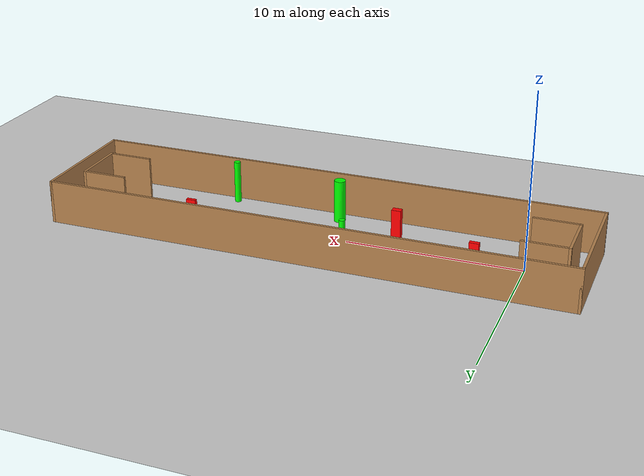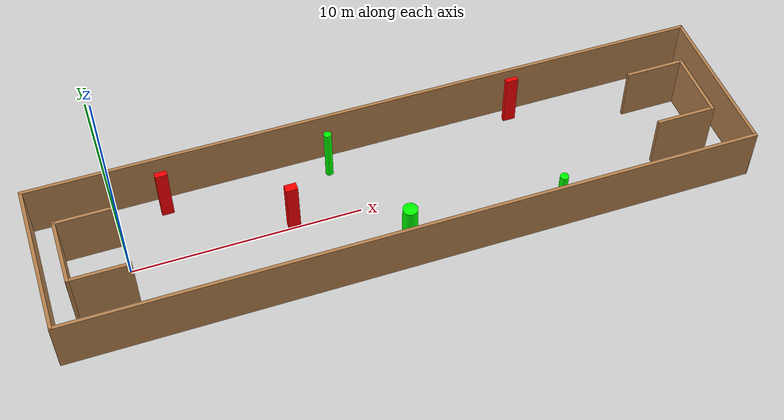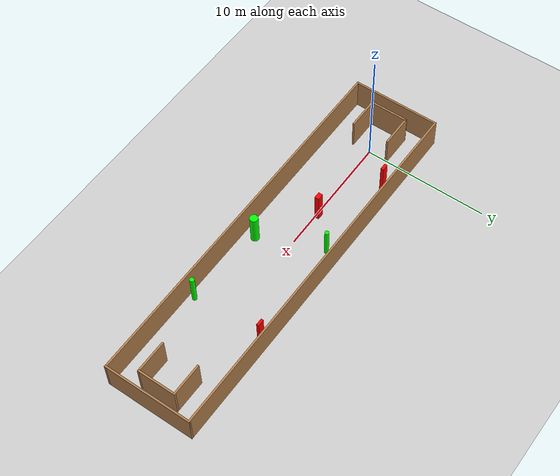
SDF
<sdf version="1.7">
 <world name="default">
  <light name="sun" type="directional">
   <pose>0 0 10 0 -0 0</pose>
   <diffuse>0.8 0.8 0.8 1</diffuse>
   <specular>0.2 0.2 0.2 1</specular>
   <attenuation>
    <range>1000</range>
    <constant>0.9</constant>
    <linear>0.01</linear>
    <quadratic>0.001</quadratic>
   </attenuation>
   <direction>-0.5 0.1 -0.9</direction>
   <spot><inner_angle>0</inner_angle><outer_angle>0</outer_angle><falloff>0</falloff></spot>
  </light>
  <model name="ground_plane">
   <static>1</static>
   <link name="link">
    <collision name="collision">
     <geometry><plane><normal>0 0 1</normal><size>100 100</size></plane></geometry>
     <surface>
      <contact><collide_bitmask>65535</collide_bitmask></contact>
      <friction><ode><mu>100</mu><mu2>50</mu2></ode></friction>
     </surface>
    </collision>
    <visual name="visual">
     <cast_shadows>0</cast_shadows>
     <geometry><plane><normal>0 0 1</normal><size>100 100</size></plane></geometry>
     <material>
      <script><uri>file://media/materials/scripts/gazebo.material</uri><name>Gazebo/Grey</name></script>
     </material>
    </visual>
   </link>
  </model>
  <gravity>0 0 -9.8</gravity>
  <magnetic_field>6e-06 2.3e-05 -4.2e-05</magnetic_field>
  <atmosphere type="adiabatic"/>
  <physics type="ode">
   <max_step_size>0.001</max_step_size>
   <real_time_factor>1</real_time_factor>
   <real_time_update_rate>1000</real_time_update_rate>
  </physics>
  <scene><ambient>0.4 0.4 0.4 1</ambient><background>0.7 0.7 0.7 1</background><shadows>1</shadows></scene>
  <spherical_coordinates>
   <surface_model>EARTH_WGS84</surface_model>
   <latitude_deg>0</latitude_deg>
   <longitude_deg>0</longitude_deg>
   <elevation>0</elevation>
   <heading_deg>0</heading_deg>
  </spherical_coordinates>
  <model name="my_base_walls">
   <link name="Wall_0">
    <collision name="Wall_0_Collision">
     <geometry><box><size>7.15 0.15 2.5</size></box></geometry>
     <pose>0 0 1.25 0 -0 0</pose>
    </collision>
    <visual name="Wall_0_Visual">
     <pose>0 0 1.25 0 -0 0</pose>
     <geometry><box><size>7.15 0.15 2.5</size></box></geometry>
     <material>
      <script><uri>file://media/materials/scripts/gazebo.material</uri><name>Gazebo/Wood</name></script>
      <ambient>1 1 1 1</ambient>
     </material>
     <meta><layer>0</layer></meta>
    </visual>
    <pose>-15 0 0 0 -0 1.5708</pose>
   </link>
   <link name="Wall_10">
    <collision name="Wall_10_Collision">
     <geometry><box><size>2.65 0.15 2.5</size></box></geometry>
     <pose>0 0 1.25 0 -0 0</pose>
    </collision>
    <visual name="Wall_10_Visual">
     <pose>0 0 1.25 0 -0 0</pose>
     <geometry><box><size>2.65 0.15 2.5</size></box></geometry>
     <material>
      <script><uri>file://media/materials/scripts/gazebo.material</uri><name>Gazebo/Wood</name></script>
      <ambient>1 1 1 1</ambient>
     </material>
     <meta><layer>0</layer></meta>
    </visual>
    <pose>-12.75 -1.5 0 0 -0 0</pose>
   </link>
   <link name="Wall_12">
    <collision name="Wall_12_Collision">
     <geometry><box><size>2.65 0.15 2.5</size></box></geometry>
     <pose>0 0 1.25 0 -0 0</pose>
    </collision>
    <visual name="Wall_12_Visual">
     <pose>0 0 1.25 0 -0 0</pose>
     <geometry><box><size>2.65 0.15 2.5</size></box></geometry>
     <material>
      <script><uri>file://media/materials/scripts/gazebo.material</uri><name>Gazebo/Wood</name></script>
      <ambient>1 1 1 1</ambient>
     </material>
     <meta><layer>0</layer></meta>
    </visual>
    <pose>-12.75 1.5 0 0 -0 0</pose>
   </link>
   <link name="Wall_14">
    <collision name="Wall_14_Collision">
     <geometry><box><size>3.15 0.15 2.5</size></box></geometry>
     <pose>0 0 1.25 0 -0 0</pose>
    </collision>
    <visual name="Wall_14_Visual">
     <pose>0 0 1.25 0 -0 0</pose>
     <geometry><box><size>3.15 0.15 2.5</size></box></geometry>
     <material>
      <script><uri>file://media/materials/scripts/gazebo.material</uri><name>Gazebo/Wood</name></script>
      <ambient>1 1 1 1</ambient>
     </material>
     <meta><layer>0</layer></meta>
    </visual>
    <pose>14 0 0 0 -0 -1.5708</pose>
   </link>
   <link name="Wall_15">
    <collision name="Wall_15_Collision">
     <geometry><box><size>2.65 0.15 2.5</size></box></geometry>
     <pose>0 0 1.25 0 -0 0</pose>
    </collision>
    <visual name="Wall_15_Visual">
     <pose>0 0 1.25 0 -0 0</pose>
     <geometry><box><size>2.65 0.15 2.5</size></box></geometry>
     <material>
      <script><uri>file://media/materials/scripts/gazebo.material</uri><name>Gazebo/Wood</name></script>
      <ambient>1 1 1 1</ambient>
     </material>
     <meta><layer>0</layer></meta>
    </visual>
    <pose>12.75 -1.5 0 0 -0 3.14159</pose>
   </link>
   <link name="Wall_17">
    <collision name="Wall_17_Collision">
     <geometry><box><size>2.65 0.15 2.5</size></box></geometry>
     <pose>0 0 1.25 0 -0 0</pose>
    </collision>
    <visual name="Wall_17_Visual">
     <pose>0 0 1.25 0 -0 0</pose>
     <geometry><box><size>2.65 0.15 2.5</size></box></geometry>
     <material>
      <script><uri>file://media/materials/scripts/gazebo.material</uri><name>Gazebo/Wood</name></script>
      <ambient>1 1 1 1</ambient>
     </material>
     <meta><layer>0</layer></meta>
    </visual>
    <pose>12.75 1.5 0 0 -0 3.14159</pose>
   </link>
   <link name="Wall_2">
    <collision name="Wall_2_Collision">
     <geometry><box><size>30.15 0.15 2.5</size></box></geometry>
     <pose>0 0 1.25 0 -0 0</pose>
    </collision>
    <visual name="Wall_2_Visual">
     <pose>0 0 1.25 0 -0 0</pose>
     <geometry><box><size>30.15 0.15 2.5</size></box></geometry>
     <material>
      <script><uri>file://media/materials/scripts/gazebo.material</uri><name>Gazebo/Wood</name></script>
      <ambient>1 1 1 1</ambient>
     </material>
     <meta><layer>0</layer></meta>
    </visual>
    <pose>-0 -3.5 0 0 -0 0</pose>
   </link>
   <link name="Wall_4">
    <collision name="Wall_4_Collision">
     <geometry><box><size>30.15 0.15 2.5</size></box></geometry>
     <pose>0 0 1.25 0 -0 0</pose>
    </collision>
    <visual name="Wall_4_Visual">
     <pose>0 0 1.25 0 -0 0</pose>
     <geometry><box><size>30.15 0.15 2.5</size></box></geometry>
     <material>
      <script><uri>file://media/materials/scripts/gazebo.material</uri><name>Gazebo/Wood</name></script>
      <ambient>1 1 1 1</ambient>
     </material>
     <meta><layer>0</layer></meta>
    </visual>
    <pose>-0 3.5 0 0 -0 0</pose>
   </link>
   <link name="Wall_6">
    <collision name="Wall_6_Collision">
     <geometry><box><size>7.15 0.15 2.5</size></box></geometry>
     <pose>0 0 1.25 0 -0 0</pose>
    </collision>
    <visual name="Wall_6_Visual">
     <pose>0 0 1.25 0 -0 0</pose>
     <geometry><box><size>7.15 0.15 2.5</size></box></geometry>
     <material>
      <script><uri>file://media/materials/scripts/gazebo.material</uri><name>Gazebo/Wood</name></script>
      <ambient>1 1 1 1</ambient>
     </material>
     <meta><layer>0</layer></meta>
    </visual>
    <pose>15 0 0 0 -0 -1.5708</pose>
   </link>
   <link name="Wall_9">
    <collision name="Wall_9_Collision">
     <geometry><box><size>3.15 0.15 2.5</size></box></geometry>
     <pose>0 0 1.25 0 -0 0</pose>
    </collision>
    <visual name="Wall_9_Visual">
     <pose>0 0 1.25 0 -0 0</pose>
     <geometry><box><size>3.15 0.15 2.5</size></box></geometry>
     <material>
      <script><uri>file://media/materials/scripts/gazebo.material</uri><name>Gazebo/Wood</name></script>
      <ambient>1 1 1 1</ambient>
     </material>
     <meta><layer>0</layer></meta>
    </visual>
    <pose>-14 0 0 0 -0 -1.5708</pose>
   </link>
   <static>1</static>
   <pose>11.5 0 0 0 -0 0</pose>
  </model>
  <model name="cylinder1">
   <static>1</static>
   <link name="link">
    <inertial>
     <mass>1</mass>
     <inertia><ixx>0.5</ixx><ixy>0</ixy><ixz>0</ixz><iyy>0.5</iyy><iyz>0</iyz><izz>1</izz></inertia>
    </inertial>
    <collision name="collision">
     <geometry><cylinder><radius>0.18548184002192725</radius><length>2.5</length></cylinder></geometry>
    </collision>
    <visual name="visual">
     <geometry><cylinder><radius>0.18548184002192725</radius><length>2.5</length></cylinder></geometry>
     <material>
      <ambient>0 1 0 1</ambient>
      <diffuse>0 1 0 1</diffuse>
      <specular>0.1 0.1 0.1 1</specular>
      <emissive>0 0 0 0</emissive>
     </material>
    </visual>
   </link>
   <pose>17.919174835664215 -2.964249737826059 1.25 0 0 0</pose>
  </model>
  <model name="cylinder2">
   <static>1</static>
   <link name="link">
    <inertial>
     <mass>1</mass>
     <inertia><ixx>0.5</ixx><ixy>0</ixy><ixz>0</ixz><iyy>0.5</iyy><iyz>0</iyz><izz>1</izz></inertia>
    </inertial>
    <collision name="collision">
     <geometry><cylinder><radius>0.16707664510622686</radius><length>2.5</length></cylinder></geometry>
    </collision>
    <visual name="visual">
     <geometry><cylinder><radius>0.16707664510622686</radius><length>2.5</length></cylinder></geometry>
     <material>
      <ambient>0 1 0 1</ambient>
      <diffuse>0 1 0 1</diffuse>
      <specular>0.1 0.1 0.1 1</specular>
      <emissive>0 0 0 0</emissive>
     </material>
    </visual>
   </link>
   <pose>9.354463557236258 2.4594347185683 1.25 0 0 0</pose>
  </model>
  <model name="cylinder3">
   <static>1</static>
   <link name="link">
    <inertial>
     <mass>1</mass>
     <inertia><ixx>0.5</ixx><ixy>0</ixy><ixz>0</ixz><iyy>0.5</iyy><iyz>0</iyz><izz>1</izz></inertia>
    </inertial>
    <collision name="collision">
     <geometry><cylinder><radius>0.32416614149694045</radius><length>2.5</length></cylinder></geometry>
    </collision>
    <visual name="visual">
     <geometry><cylinder><radius>0.32416614149694045</radius><length>2.5</length></cylinder></geometry>
     <material>
      <ambient>0 1 0 1</ambient>
      <diffuse>0 1 0 1</diffuse>
      <specular>0.1 0.1 0.1 1</specular>
      <emissive>0 0 0 0</emissive>
     </material>
    </visual>
   </link>
   <pose>11.314628688363365 -2.52101461284824 1.25 0 0 0</pose>
  </model>
  <model name="box1">
   <static>1</static>
   <link name="link">
    <inertial>
     <mass>1</mass>
     <inertia><ixx>0.083</ixx><ixy>0</ixy><ixz>0</ixz><iyy>0.083</iyy><iyz>0</iyz><izz>0.083</izz></inertia>
    </inertial>
    <collision name="collision">
     <geometry><box><size>0.5263332011200486 0.24691930433820594 2.5</size></box></geometry>
    </collision>
    <visual name="visual">
     <geometry><box><size>0.5263332011200486 0.24691930433820594 2.5</size></box></geometry>
     <material>
      <ambient>1 0 0 1</ambient>
      <diffuse>1 0 0 1</diffuse>
      <specular>0.1 0.1 0.1 1</specular>
      <emissive>0 0 0 0</emissive>
     </material>
    </visual>
    <sensor name="my_contact" type="contact">
     <contact><collision>box_collision</collision><topic>__default_topic__</topic></contact>
    </sensor>
   </link>
   <pose>2.161167702987683 2.6062651259918193 1.25 0 0 0</pose>
  </model>
  <model name="box2">
   <static>1</static>
   <link name="link">
    <inertial>
     <mass>1</mass>
     <inertia><ixx>0.083</ixx><ixy>0</ixy><ixz>0</ixz><iyy>0.083</iyy><iyz>0</iyz><izz>0.083</izz></inertia>
    </inertial>
    <collision name="collision">
     <geometry><box><size>0.545960829960032 0.2001453024576002 2.5</size></box></geometry>
    </collision>
    <visual name="visual">
     <geometry><box><size>0.545960829960032 0.2001453024576002 2.5</size></box></geometry>
     <material>
      <ambient>1 0 0 1</ambient>
      <diffuse>1 0 0 1</diffuse>
      <specular>0.1 0.1 0.1 1</specular>
      <emissive>0 0 0 0</emissive>
     </material>
    </visual>
    <sensor name="my_contact" type="contact">
     <contact><collision>box_collision</collision><topic>__default_topic__</topic></contact>
    </sensor>
   </link>
   <pose>17.960988146890603 2.9039815657603594 1.25 0 0 0</pose>
  </model>
  <model name="box3">
   <static>1</static>
   <link name="link">
    <inertial>
     <mass>1</mass>
     <inertia><ixx>0.083</ixx><ixy>0</ixy><ixz>0</ixz><iyy>0.083</iyy><iyz>0</iyz><izz>0.083</izz></inertia>
    </inertial>
    <collision name="collision">
     <geometry><box><size>0.5202760461181406 0.35742282047737 2.5</size></box></geometry>
    </collision>
    <visual name="visual">
     <geometry><box><size>0.5202760461181406 0.35742282047737 2.5</size></box></geometry>
     <material>
      <ambient>1 0 0 1</ambient>
      <diffuse>1 0 0 1</diffuse>
      <specular>0.1 0.1 0.1 1</specular>
      <emissive>0 0 0 0</emissive>
     </material>
    </visual>
    <sensor name="my_contact" type="contact">
     <contact><collision>box_collision</collision><topic>__default_topic__</topic></contact>
    </sensor>
   </link>
   <pose>7.05954248117769 0.1643573743041733 1.25 0 0 0</pose>
  </model>
 </world>
</sdf>
